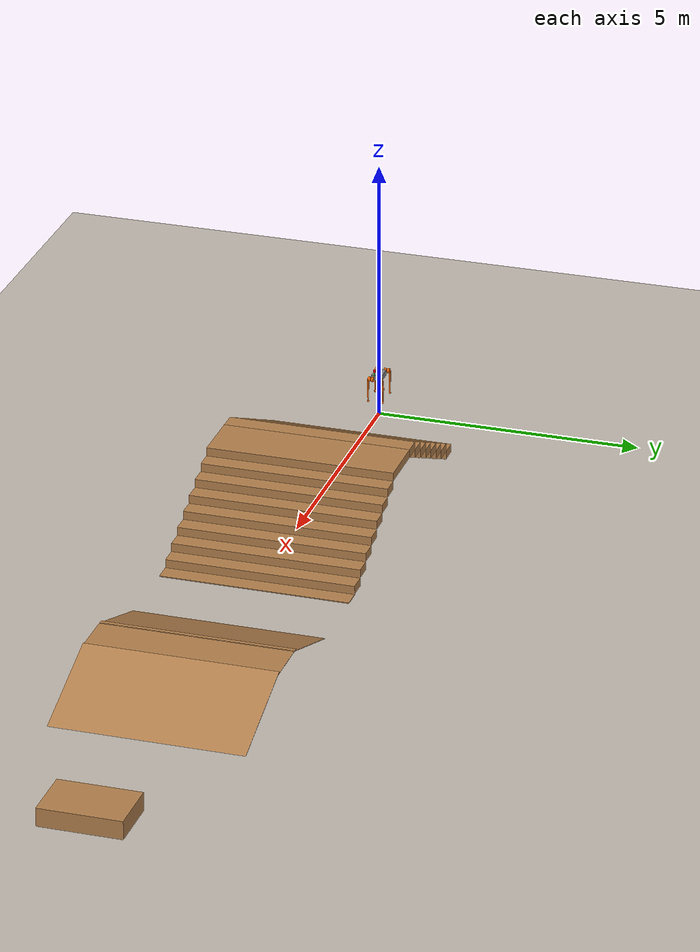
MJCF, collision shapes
<mujoco model="quad48 scene">
  <include file="quad48.xml" />

  <statistic center="1.0 0.7 1.0" extent="0.8" />

  <visual>

    <headlight diffuse="0.6 0.6 0.6" ambient="0.15 0.15 0.15" specular="0.9 0.9 0.9" />

    <rgba haze="0.0 0.0 0.0 1" />

    <global azimuth="-140" elevation="-20" />
  </visual>

  <asset>

    <texture type="skybox" builtin="flat" rgb1="1 1 1" rgb2="1 1 1" width="512" height="3072" />

    <texture name="floor_tex" type="2d" file="flooring2.png" />

    <material name="floor_mat" texture="floor_tex" texuniform="true" texrepeat="1 1" reflectance="0.2" />

    <texture type="2d" name="groundplane" builtin="checker" mark="edge" rgb1="0.2 0.3 0.4" rgb2="0.1 0.2 0.3" markrgb="0.8 0.8 0.8" width="300" height="300" />
    <material name="groundplane" texture="groundplane" texuniform="true" texrepeat="5 5" reflectance="0.2" />
  <texture name="wood_tex" type="2d" file="wood_texture.png" /><material name="wood" texture="wood_tex" texuniform="true" texrepeat="2 2" specular="0.3" shininess="0.1" reflectance="0.1" /></asset>

  <worldbody>
    <light pos="1 0 3.5" dir="0 0 -1" directional="true" />

    <geom name="floor" size="0 0 0.05" type="plane" material="floor_mat" />
  <geom pos="1.33 0.0 0.08" type="box" size="0.165 1.75 0.08" quat="1.0 0.0 0.0 0.0" material="wood" /><geom pos="1.6600000000000001 0.0 0.24" type="box" size="0.165 1.75 0.08" quat="1.0 0.0 0.0 0.0" material="wood" /><geom pos="1.99 0.0 0.4" type="box" size="0.165 1.75 0.08" quat="1.0 0.0 0.0 0.0" material="wood" /><geom pos="2.3200000000000003 0.0 0.56" type="box" size="0.165 1.75 0.08" quat="1.0 0.0 0.0 0.0" material="wood" /><geom pos="2.6500000000000004 0.0 0.7200000000000001" type="box" size="0.165 1.75 0.08" quat="1.0 0.0 0.0 0.0" material="wood" /><geom pos="2.9800000000000004 0.0 0.8800000000000001" type="box" size="0.165 1.75 0.08" quat="1.0 0.0 0.0 0.0" material="wood" /><geom pos="3.31 0.0 1.04" type="box" size="0.165 1.75 0.08" quat="1.0 0.0 0.0 0.0" material="wood" /><geom pos="3.64 0.0 1.2" type="box" size="0.165 1.75 0.08" quat="1.0 0.0 0.0 0.0" material="wood" /><geom pos="4.305 0.0 1.2" type="box" size="0.5 1.75 0.08" quat="1.0 0.0 0.0 0.0" material="wood" /><geom pos="4.970000000000001 0.0 1.04" type="box" size="0.165 1.75 0.08" quat="1.0 0.0 0.0 0.0" material="wood" /><geom pos="5.3 0.0 0.8799999999999999" type="box" size="0.165 1.75 0.08" quat="1.0 0.0 0.0 0.0" material="wood" /><geom pos="5.63 0.0 0.72" type="box" size="0.165 1.75 0.08" quat="1.0 0.0 0.0 0.0" material="wood" /><geom pos="5.96 0.0 0.5599999999999999" type="box" size="0.165 1.75 0.08" quat="1.0 0.0 0.0 0.0" material="wood" /><geom pos="6.29 0.0 0.3999999999999999" type="box" size="0.165 1.75 0.08" quat="1.0 0.0 0.0 0.0" material="wood" /><geom pos="6.62 0.0 0.24" type="box" size="0.165 1.75 0.08" quat="1.0 0.0 0.0 0.0" material="wood" /><geom pos="6.95 0.0 0.07999999999999985" type="box" size="0.165 1.75 0.08" quat="1.0 0.0 0.0 0.0" material="wood" /><geom pos="7.28 0.0 -0.08000000000000007" type="box" size="0.165 1.75 0.08" quat="1.0 0.0 0.0 0.0" material="wood" /><geom pos="9.679243225836387 0.0 0.305" type="box" size="0.8992432258363866 1.75 0.005" quat="0.984807753012208 0.0 -0.17364817766693033 0.0" material="wood" /><geom pos="10.928486451672775 0.0 0.605" type="box" size="0.5 1.75 0.005" quat="1.0 0.0 0.0 0.0" material="wood" /><geom pos="12.252729677509162 0.0 0.305" type="box" size="0.9742432258363867 1.75 0.005" quat="0.984807753012208 0.0 0.17364817766693033 0.0" material="wood" /><geom pos="15.876972903345548 0.0 0.17" type="box" size="0.5 0.75 0.17" quat="1.0 0.0 0.0 0.0" material="wood" /></worldbody>
</mujoco>

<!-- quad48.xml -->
<mujoco model="sduog48">
    <compiler angle="radian" meshdir="meshes/"/>
    <option gravity='0 0 -9.81' solver='PGS'/>
    <size njmax="500" nconmax="100" />
    <asset>
        <mesh name="trunk" file="trunk.stl" />
        <mesh name="hip" file="hip.stl" />
        <mesh name="thigh_mirror" file="thigh_mirror.stl" />
        <mesh name="calf" file="calf.stl" />
        <mesh name="thigh" file="thigh.stl" />
    </asset>
    <worldbody>
        <body name="trunk" pos="0 0 0.8">
            <camera name="depth_cam"
                pos="0.28 0.0 0.2"        euler="0 -0.349 0"
                fovy="79.3"
                mode="fixed"/>
            <body name="cam_visualizer" pos="0.28 0.0 0.2" euler="0 0 0">
                <geom type="box" size="0.02 0.02 0.02" rgba="1 0 0 1"/>
                <geom type="box" size="0.005 0.005 0.05" pos="0 0 -0.06" rgba="0 1 0 1"/>
            </body>
            <inertial pos="-0.00998573 0.00199715 -0.00499287" quat="0.00436269 0.709939 -0.00785922 0.704206" mass="7.01" diaginertia="0.124184 0.107012 0.0303102" />
            <joint name="floating_base_joint" type="free" />
            <geom type="mesh" contype="0" conaffinity="0" group="1" mesh="trunk" />
            <geom size="0.1505 0.1 0.055" type="box" />
            <geom size="0.0075 0.0075 0.002" type="box" contype="0" conaffinity="0" group="1" />

            <body name="FL_hip" pos="0.226 0.055 0">
                <inertial pos="-0.003311 0.000635 3.1e-05" quat="0.689413 0.153534 0.154338 0.690882" mass="0.75" diaginertia="0.000775212 0.000502914 0.000502055" />
                <joint name="FL_hip_joint" pos="0 0 0" axis="1 0 0" limited="true" range="-1.0472 1.0472" />
                <geom type="mesh" contype="0" conaffinity="0" group="1" rgba="1 0.423529 0.0392157 1" mesh="hip" />
                <geom size="0.045 0.02" quat="0.707107 0.707107 0 0" type="cylinder" rgba="1 0.423529 0.0392157 1" />
                <body name="FL_thigh" pos="0 0.0875 0">
                    <inertial pos="-0.002 -0.023 -0.0263" quat="0.73046 0.0868634 -0.0316401 0.676669" mass="1.25" diaginertia="0.00545464 0.00531835 0.000942016" />
                    <joint name="FL_thigh_joint" pos="0 0 0" axis="0 -1 0" limited="true" range="-3.14159 1.0472" />
                    <geom type="mesh" contype="0" conaffinity="0" group="1" rgba="1 0.423529 0.0392157 1" mesh="thigh" />
                    <geom size="0.1125 0.01225 0.017" pos="-0.012 0 -0.1125" quat="0.670882 0 0.741564 0" type="box" rgba="1 0.423529 0.0392157 1" />
                    <geom size="0.045 0.02" pos="0 -0.025 0" quat="0.707107 0.707107 0 0" type="cylinder" rgba="1 0.423529 0.0392157 1" />
                    <body name="FL_calf" pos="0 0 -0.225">
                        <inertial pos="0.00909091 0 -0.108636" quat="0.705775 0.0433718 0.0433718 0.705775" mass="0.22" diaginertia="0.00183194 0.00181008 4.5767e-05" />
                        <joint name="FL_calf_joint" pos="0 0 0" axis="0 -1 0" limited="true" range="0.916298 2.69653" />
                        <geom type="mesh" contype="0" conaffinity="0" group="1" rgba="1 0.423529 0.0392157 1" mesh="calf" />
                        <geom size="0.1125 0.008 0.008" pos="0 0 -0.1125" quat="0.707107 0 0.707107 0" type="box" rgba="1 0.423529 0.0392157 1" />
                        <geom size="0.01" pos="0 0 -0.225" contype="0" conaffinity="0" group="1" rgba="1 0.423529 0.0392157 1" />
                        <geom size="0.02" pos="0 0 -0.225" rgba="1 0.423529 0.0392157 1" />
                    </body>
                </body>
            </body>
            <body name="FR_hip" pos="0.226 -0.055 0">
                <inertial pos="-0.003311 -0.000635 3.1e-05" quat="0.690882 0.154338 0.153534 0.689413" mass="0.75" diaginertia="0.000775212 0.000502914 0.000502055" />
                <joint name="FR_hip_joint" pos="0 0 0" axis="1 0 0" limited="true" range="-1.0472 1.0472" />
                <geom quat="0 1 0 0" type="mesh" contype="0" conaffinity="0" group="1" rgba="1 0.423529 0.0392157 1" mesh="hip" />
                <geom size="0.045 0.02" quat="0.707107 0.707107 0 0" type="cylinder" rgba="1 0.423529 0.0392157 1" />
                <body name="FR_thigh" pos="0 -0.0875 0">
                    <inertial pos="-0.002 0.023 -0.0263" quat="0.676669 -0.0316401 0.0868634 0.73046" mass="1.25" diaginertia="0.00545464 0.00531835 0.000942016" />
                    <joint name="FR_thigh_joint" pos="0 0 0" axis="0 -1 0" limited="true" range="-3.14159 1.0472" />
                    <geom type="mesh" contype="0" conaffinity="0" group="1" rgba="1 0.423529 0.0392157 1" mesh="thigh_mirror" />
                    <geom size="0.1125 0.01225 0.017" pos="-0.012 0 -0.1125" quat="0.670882 0 0.741564 0" type="box" rgba="1 0.423529 0.0392157 1" />
                    <geom size="0.045 0.02" pos="0 0.025 0" quat="0.707107 0.707107 0 0" type="cylinder" rgba="1 0.423529 0.0392157 1" />
                    <body name="FR_calf" pos="0 0 -0.225">
                        <inertial pos="0.00909091 0 -0.108636" quat="0.705775 0.0433718 0.0433718 0.705775" mass="0.22" diaginertia="0.00183194 0.00181008 4.5767e-05" />
                        <joint name="FR_calf_joint" pos="0 0 0" axis="0 -1 0" limited="true" range="0.916298 2.69653" />
                        <geom type="mesh" contype="0" conaffinity="0" group="1" rgba="1 0.423529 0.0392157 1" mesh="calf" />
                        <geom size="0.1125 0.008 0.008" pos="0 0 -0.1125" quat="0.707107 0 0.707107 0" type="box" rgba="1 0.423529 0.0392157 1" />
                        <geom size="0.01" pos="0 0 -0.225" contype="0" conaffinity="0" group="1" rgba="1 0.423529 0.0392157 1" />
                        <geom size="0.02" pos="0 0 -0.225" rgba="1 0.423529 0.0392157 1" />
                    </body>
                </body>
            </body>
            <body name="RL_hip" pos="-0.226 0.055 0">
                <inertial pos="0.003311 0.000635 3.1e-05" quat="0.690882 -0.154338 -0.153534 0.689413" mass="0.75" diaginertia="0.000775212 0.000502914 0.000502055" />
                <joint name="RL_hip_joint" pos="0 0 0" axis="1 0 0" limited="true" range="-1.0472 1.0472" />
                <geom quat="0 0 1 0" type="mesh" contype="0" conaffinity="0" group="1" rgba="1 0.423529 0.0392157 1" mesh="hip" />
                <geom size="0.045 0.02" quat="0.707107 0.707107 0 0" type="cylinder" rgba="1 0.423529 0.0392157 1" />
                <body name="RL_thigh" pos="0 0.0875 0">
                    <inertial pos="-0.002 -0.023 -0.0263" quat="0.73046 0.0868634 -0.0316401 0.676669" mass="1.25" diaginertia="0.00545464 0.00531835 0.000942016" />
                    <joint name="RL_thigh_joint" pos="0 0 0" axis="0 -1 0" limited="true" range="-3.14159 1.0472" />
                    <geom type="mesh" contype="0" conaffinity="0" group="1" rgba="1 0.423529 0.0392157 1" mesh="thigh" />
                    <geom size="0.1125 0.01225 0.017" pos="-0.012 0 -0.1125" quat="0.670882 0 0.741564 0" type="box" rgba="1 0.423529 0.0392157 1" />
                    <geom size="0.045 0.02" pos="0 -0.025 0" quat="0.707107 0.707107 0 0" type="cylinder" rgba="1 0.423529 0.0392157 1" />
                    <body name="RL_calf" pos="0 0 -0.225">
                        <inertial pos="0.00909091 0 -0.108636" quat="0.705775 0.0433718 0.0433718 0.705775" mass="0.22" diaginertia="0.00183194 0.00181008 4.5767e-05" />
                        <joint name="RL_calf_joint" pos="0 0 0" axis="0 -1 0" limited="true" range="0.916298 2.69653" />
                        <geom type="mesh" contype="0" conaffinity="0" group="1" rgba="1 0.423529 0.0392157 1" mesh="calf" />
                        <geom size="0.1125 0.008 0.008" pos="0 0 -0.1125" quat="0.707107 0 0.707107 0" type="box" rgba="1 0.423529 0.0392157 1" />
                        <geom size="0.01" pos="0 0 -0.225" contype="0" conaffinity="0" group="1" rgba="1 0.423529 0.0392157 1" />
                        <geom size="0.02" pos="0 0 -0.225" rgba="1 0.423529 0.0392157 1" />
                    </body>
                </body>
            </body>
            <body name="RR_hip" pos="-0.226 -0.055 0">
                <inertial pos="0.003311 -0.000635 3.1e-05" quat="0.689413 -0.153534 -0.154338 0.690882" mass="0.75" diaginertia="0.000775212 0.000502914 0.000502055" />
                <joint name="RR_hip_joint" pos="0 0 0" axis="1 0 0" limited="true" range="-1.0472 1.0472" />
                <geom quat="0 0 0 -1" type="mesh" contype="0" conaffinity="0" group="1" rgba="1 0.423529 0.0392157 1" mesh="hip" />
                <geom size="0.045 0.02" quat="0.707107 0.707107 0 0" type="cylinder" rgba="1 0.423529 0.0392157 1" />
                <body name="RR_thigh" pos="0 -0.0875 0">
                    <inertial pos="-0.002 0.023 -0.0263" quat="0.676669 -0.0316401 0.0868634 0.73046" mass="1.25" diaginertia="0.00545464 0.00531835 0.000942016" />
                    <joint name="RR_thigh_joint" pos="0 0 0" axis="0 -1 0" limited="true" range="-3.14159 1.0472" />
                    <geom type="mesh" contype="0" conaffinity="0" group="1" rgba="1 0.423529 0.0392157 1" mesh="thigh_mirror" />
                    <geom size="0.1125 0.01225 0.017" pos="-0.012 0 -0.1125" quat="0.670882 0 0.741564 0" type="box" rgba="1 0.423529 0.0392157 1" />
                    <geom size="0.045 0.02" pos="0 0.025 0" quat="0.707107 0.707107 0 0" type="cylinder" rgba="1 0.423529 0.0392157 1" />
                    <body name="RR_calf" pos="0 0 -0.225">
                        <inertial pos="0.00909091 0 -0.108636" quat="0.705775 0.0433718 0.0433718 0.705775" mass="0.22" diaginertia="0.00183194 0.00181008 4.5767e-05" />
                        <joint name="RR_calf_joint" pos="0 0 0" axis="0 -1 0" limited="true" range="0.916298 2.69653" />
                        <geom type="mesh" contype="0" conaffinity="0" group="1" rgba="1 0.423529 0.0392157 1" mesh="calf" />
                        <geom size="0.1125 0.008 0.008" pos="0 0 -0.1125" quat="0.707107 0 0.707107 0" type="box" rgba="1 0.423529 0.0392157 1" />
                        <geom size="0.01" pos="0 0 -0.225" contype="0" conaffinity="0" group="1" rgba="1 0.423529 0.0392157 1" />
                        <geom size="0.02" pos="0 0 -0.225" rgba="1 0.423529 0.0392157 1" />
                    </body>
                </body>
            </body>

        </body>
    </worldbody>

<actuator>
    <motor name="FL_hip" joint="FL_hip_joint" />
    <motor name="FL_thigh" joint="FL_thigh_joint" />
    <motor name="FL_calf" joint="FL_calf_joint" />
    <motor name="FR_hip" joint="FR_hip_joint"/>
    <motor name="FR_thigh" joint="FR_thigh_joint" />
    <motor name="FR_calf" joint="FR_calf_joint"/>
    <motor name="RL_hip" joint="RL_hip_joint" />
    <motor name="RL_thigh" joint="RL_thigh_joint" />
    <motor name="RL_calf" joint="RL_calf_joint" />
    <motor name="RR_hip" joint="RR_hip_joint" />
    <motor name="RR_thigh" joint="RR_thigh_joint" />
    <motor name="RR_calf" joint="RR_calf_joint"/>
</actuator>
</mujoco>
